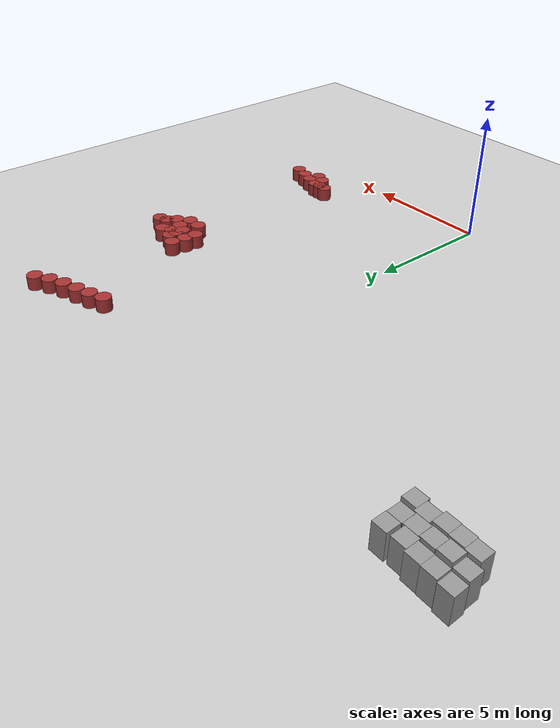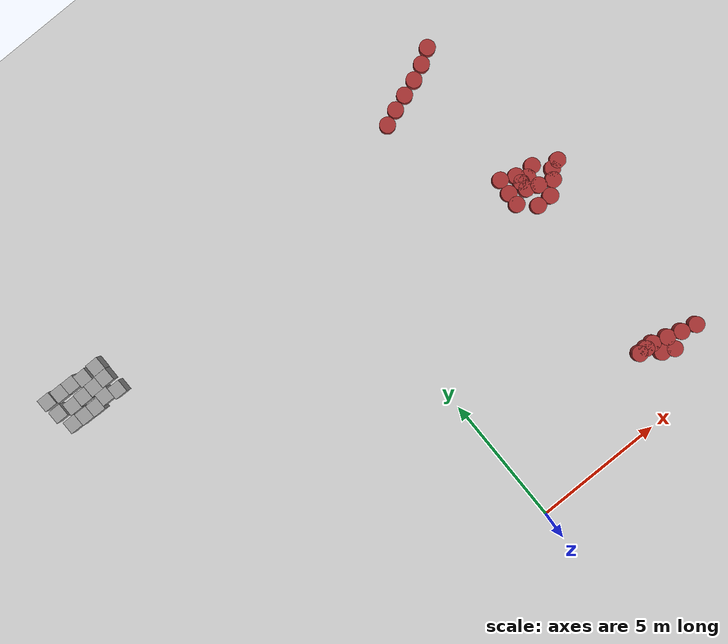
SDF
<sdf version="1.6">
 <world name="default">
  <model name="ground_plane">
   <static>1</static>
   <link name="link">
    <collision name="collision">
     <geometry><plane><normal>0 0 1</normal><size>100 100</size></plane></geometry>
     <surface><friction><ode><mu>100</mu><mu2>50</mu2></ode></friction></surface>
    </collision>
    <visual name="visual">
     <cast_shadows>0</cast_shadows>
     <geometry><plane><normal>0 0 1</normal><size>100 100</size></plane></geometry>
     <material>
      <script><uri>file://media/materials/scripts/gazebo.material</uri><name>Gazebo/Grey</name></script>
     </material>
    </visual>
   </link>
  </model>
  <model name="unit_cylinder_10">
   <static>1</static>
   <pose>5.63003 15.006 0 0 -0 0</pose>
   <link name="link">
    <inertial>
     <mass>1</mass>
     <inertia><ixx>0.145833</ixx><ixy>0</ixy><ixz>0</ixz><iyy>0.145833</iyy><iyz>0</iyz><izz>0.125</izz></inertia>
    </inertial>
    <collision name="collision">
     <geometry><cylinder><radius>0.3</radius><length>1</length></cylinder></geometry>
    </collision>
    <visual name="visual">
     <geometry><cylinder><radius>0.3</radius><length>1</length></cylinder></geometry>
     <material><ambient>0.648 0.192 0.192 1</ambient><diffuse>0.648 0.192 0.192 1</diffuse></material>
     <material>
      <script><name>Gazebo/Grey</name><uri>file://media/materials/scripts/gazebo.material</uri></script>
     </material>
    </visual>
   </link>
  </model>
  <model name="unit_cylinder_31">
   <static>1</static>
   <pose>7.97845 2.06635 0 0 -0 0</pose>
   <link name="link">
    <inertial>
     <mass>1</mass>
     <inertia><ixx>0.145833</ixx><ixy>0</ixy><ixz>0</ixz><iyy>0.145833</iyy><iyz>0</iyz><izz>0.125</izz></inertia>
    </inertial>
    <collision name="collision">
     <geometry><cylinder><radius>0.3</radius><length>1</length></cylinder></geometry>
    </collision>
    <visual name="visual">
     <geometry><cylinder><radius>0.3</radius><length>1</length></cylinder></geometry>
     <material><ambient>0.648 0.192 0.192 1</ambient><diffuse>0.648 0.192 0.192 1</diffuse></material>
     <material>
      <script><name>Gazebo/Grey</name><uri>file://media/materials/scripts/gazebo.material</uri></script>
     </material>
    </visual>
   </link>
  </model>
  <model name="unit_cylinder_36">
   <static>1</static>
   <pose>8.54934 1.9215 0 0 -0 0</pose>
   <link name="link">
    <inertial>
     <mass>1</mass>
     <inertia><ixx>0.145833</ixx><ixy>0</ixy><ixz>0</ixz><iyy>0.145833</iyy><iyz>0</iyz><izz>0.125</izz></inertia>
    </inertial>
    <collision name="collision">
     <geometry><cylinder><radius>0.3</radius><length>1</length></cylinder></geometry>
    </collision>
    <visual name="visual">
     <geometry><cylinder><radius>0.3</radius><length>1</length></cylinder></geometry>
     <material><ambient>0.648 0.192 0.192 1</ambient><diffuse>0.648 0.192 0.192 1</diffuse></material>
     <material>
      <script><name>Gazebo/Grey</name><uri>file://media/materials/scripts/gazebo.material</uri></script>
     </material>
    </visual>
   </link>
  </model>
  <model name="unit_cylinder_50">
   <static>1</static>
   <pose>6.36842 10.4436 0 0 -0 0</pose>
   <link name="link">
    <inertial>
     <mass>1</mass>
     <inertia><ixx>0.145833</ixx><ixy>0</ixy><ixz>0</ixz><iyy>0.145833</iyy><iyz>0</iyz><izz>0.125</izz></inertia>
    </inertial>
    <collision name="collision">
     <geometry><cylinder><radius>0.3</radius><length>1</length></cylinder></geometry>
    </collision>
    <visual name="visual">
     <geometry><cylinder><radius>0.3</radius><length>1</length></cylinder></geometry>
     <material><ambient>0.648 0.192 0.192 1</ambient><diffuse>0.648 0.192 0.192 1</diffuse></material>
     <material>
      <script><name>Gazebo/Grey</name><uri>file://media/materials/scripts/gazebo.material</uri></script>
     </material>
    </visual>
   </link>
  </model>
  <model name="unit_cylinder_51">
   <static>1</static>
   <pose>6.27683 9.38692 0 0 -0 0</pose>
   <link name="link">
    <inertial>
     <mass>1</mass>
     <inertia><ixx>0.145833</ixx><ixy>0</ixy><ixz>0</ixz><iyy>0.145833</iyy><iyz>0</iyz><izz>0.125</izz></inertia>
    </inertial>
    <collision name="collision">
     <geometry><cylinder><radius>0.3</radius><length>1</length></cylinder></geometry>
    </collision>
    <visual name="visual">
     <geometry><cylinder><radius>0.3</radius><length>1</length></cylinder></geometry>
     <material><ambient>0.648 0.192 0.192 1</ambient><diffuse>0.648 0.192 0.192 1</diffuse></material>
     <material>
      <script><name>Gazebo/Grey</name><uri>file://media/materials/scripts/gazebo.material</uri></script>
     </material>
    </visual>
   </link>
  </model>
  <model name="unit_cylinder_54">
   <static>1</static>
   <pose>6.84905 8.85668 0 0 -0 0</pose>
   <link name="link">
    <inertial>
     <mass>1</mass>
     <inertia><ixx>0.145833</ixx><ixy>0</ixy><ixz>0</ixz><iyy>0.145833</iyy><iyz>0</iyz><izz>0.125</izz></inertia>
    </inertial>
    <collision name="collision">
     <geometry><cylinder><radius>0.3</radius><length>1</length></cylinder></geometry>
    </collision>
    <visual name="visual">
     <geometry><cylinder><radius>0.3</radius><length>1</length></cylinder></geometry>
     <material><ambient>0.648 0.192 0.192 1</ambient><diffuse>0.648 0.192 0.192 1</diffuse></material>
     <material>
      <script><name>Gazebo/Grey</name><uri>file://media/materials/scripts/gazebo.material</uri></script>
     </material>
    </visual>
   </link>
  </model>
  <model name="unit_cylinder_55">
   <static>1</static>
   <pose>6.304 9.86983 0 0 -0 0</pose>
   <link name="link">
    <inertial>
     <mass>1</mass>
     <inertia><ixx>0.145833</ixx><ixy>0</ixy><ixz>0</ixz><iyy>0.145833</iyy><iyz>0</iyz><izz>0.125</izz></inertia>
    </inertial>
    <collision name="collision">
     <geometry><cylinder><radius>0.3</radius><length>1</length></cylinder></geometry>
    </collision>
    <visual name="visual">
     <geometry><cylinder><radius>0.3</radius><length>1</length></cylinder></geometry>
     <material><ambient>0.648 0.192 0.192 1</ambient><diffuse>0.648 0.192 0.192 1</diffuse></material>
     <material>
      <script><name>Gazebo/Grey</name><uri>file://media/materials/scripts/gazebo.material</uri></script>
     </material>
    </visual>
   </link>
  </model>
  <model name="unit_cylinder_56">
   <static>1</static>
   <pose>7.41842 8.85559 0 0 -0 0</pose>
   <link name="link">
    <inertial>
     <mass>1</mass>
     <inertia><ixx>0.145833</ixx><ixy>0</ixy><ixz>0</ixz><iyy>0.145833</iyy><iyz>0</iyz><izz>0.125</izz></inertia>
    </inertial>
    <collision name="collision">
     <geometry><cylinder><radius>0.3</radius><length>1</length></cylinder></geometry>
    </collision>
    <visual name="visual">
     <geometry><cylinder><radius>0.3</radius><length>1</length></cylinder></geometry>
     <material><ambient>0.648 0.192 0.192 1</ambient><diffuse>0.648 0.192 0.192 1</diffuse></material>
     <material>
      <script><name>Gazebo/Grey</name><uri>file://media/materials/scripts/gazebo.material</uri></script>
     </material>
    </visual>
   </link>
  </model>
  <model name="unit_cylinder_57">
   <static>1</static>
   <pose>7.32882 9.42661 0 0 -0 0</pose>
   <link name="link">
    <inertial>
     <mass>1</mass>
     <inertia><ixx>0.145833</ixx><ixy>0</ixy><ixz>0</ixz><iyy>0.145833</iyy><iyz>0</iyz><izz>0.125</izz></inertia>
    </inertial>
    <collision name="collision">
     <geometry><cylinder><radius>0.3</radius><length>1</length></cylinder></geometry>
    </collision>
    <visual name="visual">
     <geometry><cylinder><radius>0.3</radius><length>1</length></cylinder></geometry>
     <material><ambient>0.648 0.192 0.192 1</ambient><diffuse>0.648 0.192 0.192 1</diffuse></material>
     <material>
      <script><name>Gazebo/Grey</name><uri>file://media/materials/scripts/gazebo.material</uri></script>
     </material>
    </visual>
   </link>
  </model>
  <model name="unit_cylinder_59">
   <static>1</static>
   <pose>5.04319 14.7989 0 0 -0 0</pose>
   <link name="link">
    <inertial>
     <mass>1</mass>
     <inertia><ixx>0.145833</ixx><ixy>0</ixy><ixz>0</ixz><iyy>0.145833</iyy><iyz>0</iyz><izz>0.125</izz></inertia>
    </inertial>
    <collision name="collision">
     <geometry><cylinder><radius>0.3</radius><length>1</length></cylinder></geometry>
    </collision>
    <visual name="visual">
     <geometry><cylinder><radius>0.3</radius><length>1</length></cylinder></geometry>
     <material><ambient>0.648 0.192 0.192 1</ambient><diffuse>0.648 0.192 0.192 1</diffuse></material>
     <material>
      <script><name>Gazebo/Grey</name><uri>file://media/materials/scripts/gazebo.material</uri></script>
     </material>
    </visual>
   </link>
  </model>
  <model name="unit_cylinder_60">
   <static>1</static>
   <pose>4.47051 14.5568 0 0 -0 0</pose>
   <link name="link">
    <inertial>
     <mass>1</mass>
     <inertia><ixx>0.145833</ixx><ixy>0</ixy><ixz>0</ixz><iyy>0.145833</iyy><iyz>0</iyz><izz>0.125</izz></inertia>
    </inertial>
    <collision name="collision">
     <geometry><cylinder><radius>0.3</radius><length>1</length></cylinder></geometry>
    </collision>
    <visual name="visual">
     <geometry><cylinder><radius>0.3</radius><length>1</length></cylinder></geometry>
     <material><ambient>0.648 0.192 0.192 1</ambient><diffuse>0.648 0.192 0.192 1</diffuse></material>
     <material>
      <script><name>Gazebo/Grey</name><uri>file://media/materials/scripts/gazebo.material</uri></script>
     </material>
    </visual>
   </link>
  </model>
  <model name="unit_cylinder_61">
   <static>1</static>
   <pose>6.3 2.4 0 0 -0 0</pose>
   <link name="link">
    <inertial>
     <mass>1</mass>
     <inertia><ixx>0.145833</ixx><ixy>0</ixy><ixz>0</ixz><iyy>0.145833</iyy><iyz>0</iyz><izz>0.125</izz></inertia>
    </inertial>
    <collision name="collision">
     <geometry><cylinder><radius>0.3</radius><length>1</length></cylinder></geometry>
    </collision>
    <visual name="visual">
     <geometry><cylinder><radius>0.3</radius><length>1</length></cylinder></geometry>
     <material><ambient>0.648 0.192 0.192 1</ambient><diffuse>0.648 0.192 0.192 1</diffuse></material>
     <material>
      <script><name>Gazebo/Grey</name><uri>file://media/materials/scripts/gazebo.material</uri></script>
     </material>
    </visual>
   </link>
  </model>
  <model name="unit_cylinder_62">
   <static>1</static>
   <pose>6.81366 15.4863 0 0 -0 0</pose>
   <link name="link">
    <inertial>
     <mass>1</mass>
     <inertia><ixx>0.145833</ixx><ixy>0</ixy><ixz>0</ixz><iyy>0.145833</iyy><iyz>0</iyz><izz>0.125</izz></inertia>
    </inertial>
    <collision name="collision">
     <geometry><cylinder><radius>0.3</radius><length>1</length></cylinder></geometry>
    </collision>
    <visual name="visual">
     <geometry><cylinder><radius>0.3</radius><length>1</length></cylinder></geometry>
     <material><ambient>0.648 0.192 0.192 1</ambient><diffuse>0.648 0.192 0.192 1</diffuse></material>
     <material>
      <script><name>Gazebo/Grey</name><uri>file://media/materials/scripts/gazebo.material</uri></script>
     </material>
    </visual>
   </link>
  </model>
  <model name="unit_cylinder_63">
   <static>1</static>
   <pose>6.24098 15.2147 0 0 -0 0</pose>
   <link name="link">
    <inertial>
     <mass>1</mass>
     <inertia><ixx>0.145833</ixx><ixy>0</ixy><ixz>0</ixz><iyy>0.145833</iyy><iyz>0</iyz><izz>0.125</izz></inertia>
    </inertial>
    <collision name="collision">
     <geometry><cylinder><radius>0.3</radius><length>1</length></cylinder></geometry>
    </collision>
    <visual name="visual">
     <geometry><cylinder><radius>0.3</radius><length>1</length></cylinder></geometry>
     <material><ambient>0.648 0.192 0.192 1</ambient><diffuse>0.648 0.192 0.192 1</diffuse></material>
     <material>
      <script><name>Gazebo/Grey</name><uri>file://media/materials/scripts/gazebo.material</uri></script>
     </material>
    </visual>
   </link>
  </model>
  <model name="unit_cylinder_64">
   <static>1</static>
   <pose>7.44911 2.23405 0 0 -0 0</pose>
   <link name="link">
    <inertial>
     <mass>1</mass>
     <inertia><ixx>0.145833</ixx><ixy>0</ixy><ixz>0</ixz><iyy>0.145833</iyy><iyz>0</iyz><izz>0.125</izz></inertia>
    </inertial>
    <collision name="collision">
     <geometry><cylinder><radius>0.3</radius><length>1</length></cylinder></geometry>
    </collision>
    <visual name="visual">
     <geometry><cylinder><radius>0.3</radius><length>1</length></cylinder></geometry>
     <material><ambient>0.648 0.192 0.192 1</ambient><diffuse>0.648 0.192 0.192 1</diffuse></material>
     <material>
      <script><name>Gazebo/Grey</name><uri>file://media/materials/scripts/gazebo.material</uri></script>
     </material>
    </visual>
   </link>
  </model>
  <model name="unit_cylinder_65">
   <static>1</static>
   <pose>6.6 2.4 0 0 -0 0</pose>
   <link name="link">
    <inertial>
     <mass>1</mass>
     <inertia><ixx>0.145833</ixx><ixy>0</ixy><ixz>0</ixz><iyy>0.145833</iyy><iyz>0</iyz><izz>0.125</izz></inertia>
    </inertial>
    <collision name="collision">
     <geometry><cylinder><radius>0.3</radius><length>1</length></cylinder></geometry>
    </collision>
    <visual name="visual">
     <geometry><cylinder><radius>0.3</radius><length>1</length></cylinder></geometry>
     <material><ambient>0.648 0.192 0.192 1</ambient><diffuse>0.648 0.192 0.192 1</diffuse></material>
     <material>
      <script><name>Gazebo/Grey</name><uri>file://media/materials/scripts/gazebo.material</uri></script>
     </material>
    </visual>
   </link>
  </model>
  <model name="unit_cylinder_66">
   <static>1</static>
   <pose>7.3541 15.8169 0 0 -0 0</pose>
   <link name="link">
    <inertial>
     <mass>1</mass>
     <inertia><ixx>0.145833</ixx><ixy>0</ixy><ixz>0</ixz><iyy>0.145833</iyy><iyz>0</iyz><izz>0.125</izz></inertia>
    </inertial>
    <collision name="collision">
     <geometry><cylinder><radius>0.3</radius><length>1</length></cylinder></geometry>
    </collision>
    <visual name="visual">
     <geometry><cylinder><radius>0.3</radius><length>1</length></cylinder></geometry>
     <material><ambient>0.648 0.192 0.192 1</ambient><diffuse>0.648 0.192 0.192 1</diffuse></material>
     <material>
      <script><name>Gazebo/Grey</name><uri>file://media/materials/scripts/gazebo.material</uri></script>
     </material>
    </visual>
   </link>
  </model>
  <model name="unit_cylinder_68">
   <static>1</static>
   <pose>6.9 2.4 0 0 -0 0</pose>
   <link name="link">
    <inertial>
     <mass>1</mass>
     <inertia><ixx>0.145833</ixx><ixy>0</ixy><ixz>0</ixz><iyy>0.145833</iyy><iyz>0</iyz><izz>0.125</izz></inertia>
    </inertial>
    <collision name="collision">
     <geometry><cylinder><radius>0.3</radius><length>1</length></cylinder></geometry>
    </collision>
    <visual name="visual">
     <geometry><cylinder><radius>0.3</radius><length>1</length></cylinder></geometry>
     <material><ambient>0.648 0.192 0.192 1</ambient><diffuse>0.648 0.192 0.192 1</diffuse></material>
     <material>
      <script><name>Gazebo/Grey</name><uri>file://media/materials/scripts/gazebo.material</uri></script>
     </material>
    </visual>
   </link>
  </model>
  <model name="unit_cylinder_69">
   <static>1</static>
   <pose>6.9 9.6 0 0 -0 0</pose>
   <link name="link">
    <inertial>
     <mass>1</mass>
     <inertia><ixx>0.145833</ixx><ixy>0</ixy><ixz>0</ixz><iyy>0.145833</iyy><iyz>0</iyz><izz>0.125</izz></inertia>
    </inertial>
    <collision name="collision">
     <geometry><cylinder><radius>0.3</radius><length>1</length></cylinder></geometry>
    </collision>
    <visual name="visual">
     <geometry><cylinder><radius>0.3</radius><length>1</length></cylinder></geometry>
     <material><ambient>0.648 0.192 0.192 1</ambient><diffuse>0.648 0.192 0.192 1</diffuse></material>
     <material>
      <script><name>Gazebo/Grey</name><uri>file://media/materials/scripts/gazebo.material</uri></script>
     </material>
    </visual>
   </link>
  </model>
  <model name="unit_cylinder_70">
   <static>1</static>
   <pose>6.9 9.9 0 0 -0 0</pose>
   <link name="link">
    <inertial>
     <mass>1</mass>
     <inertia><ixx>0.145833</ixx><ixy>0</ixy><ixz>0</ixz><iyy>0.145833</iyy><iyz>0</iyz><izz>0.125</izz></inertia>
    </inertial>
    <collision name="collision">
     <geometry><cylinder><radius>0.3</radius><length>1</length></cylinder></geometry>
    </collision>
    <visual name="visual">
     <geometry><cylinder><radius>0.3</radius><length>1</length></cylinder></geometry>
     <material><ambient>0.648 0.192 0.192 1</ambient><diffuse>0.648 0.192 0.192 1</diffuse></material>
     <material>
      <script><name>Gazebo/Grey</name><uri>file://media/materials/scripts/gazebo.material</uri></script>
     </material>
    </visual>
   </link>
  </model>
  <model name="unit_cylinder_71">
   <static>1</static>
   <pose>6.9 10.2 0 0 -0 0</pose>
   <link name="link">
    <inertial>
     <mass>1</mass>
     <inertia><ixx>0.145833</ixx><ixy>0</ixy><ixz>0</ixz><iyy>0.145833</iyy><iyz>0</iyz><izz>0.125</izz></inertia>
    </inertial>
    <collision name="collision">
     <geometry><cylinder><radius>0.3</radius><length>1</length></cylinder></geometry>
    </collision>
    <visual name="visual">
     <geometry><cylinder><radius>0.3</radius><length>1</length></cylinder></geometry>
     <material><ambient>0.648 0.192 0.192 1</ambient><diffuse>0.648 0.192 0.192 1</diffuse></material>
     <material>
      <script><name>Gazebo/Grey</name><uri>file://media/materials/scripts/gazebo.material</uri></script>
     </material>
    </visual>
   </link>
  </model>
  <model name="unit_cylinder_72">
   <static>1</static>
   <pose>7.2 9.9 0 0 -0 0</pose>
   <link name="link">
    <inertial>
     <mass>1</mass>
     <inertia><ixx>0.145833</ixx><ixy>0</ixy><ixz>0</ixz><iyy>0.145833</iyy><iyz>0</iyz><izz>0.125</izz></inertia>
    </inertial>
    <collision name="collision">
     <geometry><cylinder><radius>0.3</radius><length>1</length></cylinder></geometry>
    </collision>
    <visual name="visual">
     <geometry><cylinder><radius>0.3</radius><length>1</length></cylinder></geometry>
     <material><ambient>0.648 0.192 0.192 1</ambient><diffuse>0.648 0.192 0.192 1</diffuse></material>
     <material>
      <script><name>Gazebo/Grey</name><uri>file://media/materials/scripts/gazebo.material</uri></script>
     </material>
    </visual>
   </link>
  </model>
  <model name="unit_cylinder_80">
   <static>1</static>
   <pose>7.8596 9.24358 0 0 -0 0</pose>
   <link name="link">
    <inertial>
     <mass>1</mass>
     <inertia><ixx>0.145833</ixx><ixy>0</ixy><ixz>0</ixz><iyy>0.145833</iyy><iyz>0</iyz><izz>0.125</izz></inertia>
    </inertial>
    <collision name="collision">
     <geometry><cylinder><radius>0.3</radius><length>1</length></cylinder></geometry>
    </collision>
    <visual name="visual">
     <geometry><cylinder><radius>0.3</radius><length>1</length></cylinder></geometry>
     <material><ambient>0.648 0.192 0.192 1</ambient><diffuse>0.648 0.192 0.192 1</diffuse></material>
     <material>
      <script><name>Gazebo/Grey</name><uri>file://media/materials/scripts/gazebo.material</uri></script>
     </material>
    </visual>
   </link>
  </model>
  <model name="unit_cylinder_82">
   <static>1</static>
   <pose>8.43246 9.69504 0 0 -0 0</pose>
   <link name="link">
    <inertial>
     <mass>1</mass>
     <inertia><ixx>0.145833</ixx><ixy>0</ixy><ixz>0</ixz><iyy>0.145833</iyy><iyz>0</iyz><izz>0.125</izz></inertia>
    </inertial>
    <collision name="collision">
     <geometry><cylinder><radius>0.3</radius><length>1</length></cylinder></geometry>
    </collision>
    <visual name="visual">
     <geometry><cylinder><radius>0.3</radius><length>1</length></cylinder></geometry>
     <material><ambient>0.648 0.192 0.192 1</ambient><diffuse>0.648 0.192 0.192 1</diffuse></material>
     <material>
      <script><name>Gazebo/Grey</name><uri>file://media/materials/scripts/gazebo.material</uri></script>
     </material>
    </visual>
   </link>
  </model>
  <model name="unit_cylinder_83">
   <static>1</static>
   <pose>8.09771 9.57615 0 0 -0 0</pose>
   <link name="link">
    <inertial>
     <mass>1</mass>
     <inertia><ixx>0.145833</ixx><ixy>0</ixy><ixz>0</ixz><iyy>0.145833</iyy><iyz>0</iyz><izz>0.125</izz></inertia>
    </inertial>
    <collision name="collision">
     <geometry><cylinder><radius>0.3</radius><length>1</length></cylinder></geometry>
    </collision>
    <visual name="visual">
     <geometry><cylinder><radius>0.3</radius><length>1</length></cylinder></geometry>
     <material><ambient>0.648 0.192 0.192 1</ambient><diffuse>0.648 0.192 0.192 1</diffuse></material>
     <material>
      <script><name>Gazebo/Grey</name><uri>file://media/materials/scripts/gazebo.material</uri></script>
     </material>
    </visual>
   </link>
  </model>
  <model name="unit_cylinder_88">
   <static>1</static>
   <pose>7.58689 10.1187 0 0 -0 0</pose>
   <link name="link">
    <inertial>
     <mass>1</mass>
     <inertia><ixx>0.145833</ixx><ixy>0</ixy><ixz>0</ixz><iyy>0.145833</iyy><iyz>0</iyz><izz>0.125</izz></inertia>
    </inertial>
    <collision name="collision">
     <geometry><cylinder><radius>0.3</radius><length>1</length></cylinder></geometry>
    </collision>
    <visual name="visual">
     <geometry><cylinder><radius>0.3</radius><length>1</length></cylinder></geometry>
     <material><ambient>0.648 0.192 0.192 1</ambient><diffuse>0.648 0.192 0.192 1</diffuse></material>
     <material>
      <script><name>Gazebo/Grey</name><uri>file://media/materials/scripts/gazebo.material</uri></script>
     </material>
    </visual>
   </link>
  </model>
  <model name="unit_cylinder_345">
   <static>1</static>
   <pose>7.39574 1.74191 0 0 -0 0</pose>
   <link name="link">
    <inertial>
     <mass>1</mass>
     <inertia><ixx>0.145833</ixx><ixy>0</ixy><ixz>0</ixz><iyy>0.145833</iyy><iyz>0</iyz><izz>0.125</izz></inertia>
    </inertial>
    <collision name="collision">
     <geometry><cylinder><radius>0.3</radius><length>1</length></cylinder></geometry>
    </collision>
    <visual name="visual">
     <geometry><cylinder><radius>0.3</radius><length>1</length></cylinder></geometry>
     <material><ambient>0.648 0.192 0.192 1</ambient><diffuse>0.648 0.192 0.192 1</diffuse></material>
     <material>
      <script><name>Gazebo/Grey</name><uri>file://media/materials/scripts/gazebo.material</uri></script>
     </material>
    </visual>
   </link>
  </model>
  <model name="unit_cylinder_352">
   <static>1</static>
   <pose>6.95838 1.92803 0 0 -0 0</pose>
   <link name="link">
    <inertial>
     <mass>1</mass>
     <inertia><ixx>0.145833</ixx><ixy>0</ixy><ixz>0</ixz><iyy>0.145833</iyy><iyz>0</iyz><izz>0.125</izz></inertia>
    </inertial>
    <collision name="collision">
     <geometry><cylinder><radius>0.3</radius><length>1</length></cylinder></geometry>
    </collision>
    <visual name="visual">
     <geometry><cylinder><radius>0.3</radius><length>1</length></cylinder></geometry>
     <material><ambient>0.648 0.192 0.192 1</ambient><diffuse>0.648 0.192 0.192 1</diffuse></material>
     <material>
      <script><name>Gazebo/Grey</name><uri>file://media/materials/scripts/gazebo.material</uri></script>
     </material>
    </visual>
   </link>
  </model>
  <model name="unit_box_clone">
   <pose>-10.7293 14.5112 0.499995 8e-06 -9e-06 0.000933</pose>
   <link name="link">
    <inertial>
     <mass>1</mass>
     <inertia>
      <ixx>0.166667</ixx>
      <ixy>0</ixy>
      <ixz>0</ixz>
      <iyy>0.166667</iyy>
      <iyz>0</iyz>
      <izz>0.166667</izz>
     </inertia>
    </inertial>
    <collision name="collision"><geometry><box><size>0.5 0.5 1</size></box></geometry></collision>
    <visual name="visual">
     <geometry><box><size>0.5 0.5 1</size></box></geometry>
     <material>
      <script><name>Gazebo/Grey</name><uri>file://media/materials/scripts/gazebo.material</uri></script>
     </material>
    </visual>
   </link>
  </model>
  <model name="unit_box_clone_0">
   <pose>-11.2666 14.562 0.5 0 0 -0.000147</pose>
   <link name="link">
    <inertial>
     <mass>1</mass>
     <inertia>
      <ixx>0.166667</ixx>
      <ixy>0</ixy>
      <ixz>0</ixz>
      <iyy>0.166667</iyy>
      <iyz>0</iyz>
      <izz>0.166667</izz>
     </inertia>
    </inertial>
    <collision name="collision"><geometry><box><size>0.5 0.5 1</size></box></geometry></collision>
    <visual name="visual">
     <geometry><box><size>0.5 0.5 1</size></box></geometry>
     <material>
      <script><name>Gazebo/Grey</name><uri>file://media/materials/scripts/gazebo.material</uri></script>
     </material>
    </visual>
   </link>
  </model>
  <model name="unit_box_clone_1">
   <pose>-10.1494 13.8993 0.5 0 0 -0.016939</pose>
   <link name="link">
    <inertial>
     <mass>1</mass>
     <inertia>
      <ixx>0.166667</ixx>
      <ixy>0</ixy>
      <ixz>0</ixz>
      <iyy>0.166667</iyy>
      <iyz>0</iyz>
      <izz>0.166667</izz>
     </inertia>
    </inertial>
    <collision name="collision"><geometry><box><size>0.5 0.5 1</size></box></geometry></collision>
    <visual name="visual">
     <geometry><box><size>0.5 0.5 1</size></box></geometry>
     <material>
      <script><name>Gazebo/Grey</name><uri>file://media/materials/scripts/gazebo.material</uri></script>
     </material>
    </visual>
   </link>
  </model>
  <model name="unit_box_clone_2">
   <pose>-10.6506 13.8773 0.5 0 0 -0.019305</pose>
   <link name="link">
    <inertial>
     <mass>1</mass>
     <inertia>
      <ixx>0.166667</ixx>
      <ixy>0</ixy>
      <ixz>0</ixz>
      <iyy>0.166667</iyy>
      <iyz>0</iyz>
      <izz>0.166667</izz>
     </inertia>
    </inertial>
    <collision name="collision"><geometry><box><size>0.5 0.5 1</size></box></geometry></collision>
    <visual name="visual">
     <geometry><box><size>0.5 0.5 1</size></box></geometry>
     <material>
      <script><name>Gazebo/Grey</name><uri>file://media/materials/scripts/gazebo.material</uri></script>
     </material>
    </visual>
   </link>
  </model>
  <model name="unit_box_clone_3">
   <pose>-11.2169 13.9833 0.5 0 0 -0.000126</pose>
   <link name="link">
    <inertial>
     <mass>1</mass>
     <inertia>
      <ixx>0.166667</ixx>
      <ixy>0</ixy>
      <ixz>0</ixz>
      <iyy>0.166667</iyy>
      <iyz>0</iyz>
      <izz>0.166667</izz>
     </inertia>
    </inertial>
    <collision name="collision"><geometry><box><size>0.5 0.5 1</size></box></geometry></collision>
    <visual name="visual">
     <geometry><box><size>0.5 0.5 1</size></box></geometry>
     <material>
      <script><name>Gazebo/Grey</name><uri>file://media/materials/scripts/gazebo.material</uri></script>
     </material>
    </visual>
   </link>
  </model>
  <model name="unit_box_clone_4">
   <pose>-10.0419 13.3198 0.5 0 0 -0.002472</pose>
   <link name="link">
    <inertial>
     <mass>1</mass>
     <inertia>
      <ixx>0.166667</ixx>
      <ixy>0</ixy>
      <ixz>0</ixz>
      <iyy>0.166667</iyy>
      <iyz>0</iyz>
      <izz>0.166667</izz>
     </inertia>
    </inertial>
    <collision name="collision"><geometry><box><size>0.5 0.5 1</size></box></geometry></collision>
    <visual name="visual">
     <geometry><box><size>0.5 0.5 1</size></box></geometry>
     <material>
      <script><name>Gazebo/Grey</name><uri>file://media/materials/scripts/gazebo.material</uri></script>
     </material>
    </visual>
   </link>
  </model>
  <model name="unit_box_clone_5">
   <pose>-10.5419 13.3368 0.5 0 0 -0.002449</pose>
   <link name="link">
    <inertial>
     <mass>1</mass>
     <inertia>
      <ixx>0.166667</ixx>
      <ixy>0</ixy>
      <ixz>0</ixz>
      <iyy>0.166667</iyy>
      <iyz>0</iyz>
      <izz>0.166667</izz>
     </inertia>
    </inertial>
    <collision name="collision"><geometry><box><size>0.5 0.5 1</size></box></geometry></collision>
    <visual name="visual">
     <geometry><box><size>0.5 0.5 1</size></box></geometry>
     <material>
      <script><name>Gazebo/Grey</name><uri>file://media/materials/scripts/gazebo.material</uri></script>
     </material>
    </visual>
   </link>
  </model>
  <model name="unit_box_clone_6">
   <pose>-11.0422 13.3682 0.499998 6e-06 4e-06 -0.001111</pose>
   <link name="link">
    <inertial>
     <mass>1</mass>
     <inertia>
      <ixx>0.166667</ixx>
      <ixy>0</ixy>
      <ixz>0</ixz>
      <iyy>0.166667</iyy>
      <iyz>0</iyz>
      <izz>0.166667</izz>
     </inertia>
    </inertial>
    <collision name="collision"><geometry><box><size>0.5 0.5 1</size></box></geometry></collision>
    <visual name="visual">
     <geometry><box><size>0.5 0.5 1</size></box></geometry>
     <material>
      <script><name>Gazebo/Grey</name><uri>file://media/materials/scripts/gazebo.material</uri></script>
     </material>
    </visual>
   </link>
  </model>
  <model name="unit_box_clone_7">
   <pose>-9.54063 13.4184 0.5 0 0 -0.004014</pose>
   <link name="link">
    <inertial>
     <mass>1</mass>
     <inertia>
      <ixx>0.166667</ixx>
      <ixy>0</ixy>
      <ixz>0</ixz>
      <iyy>0.166667</iyy>
      <iyz>0</iyz>
      <izz>0.166667</izz>
     </inertia>
    </inertial>
    <collision name="collision"><geometry><box><size>0.5 0.5 1</size></box></geometry></collision>
    <visual name="visual">
     <geometry><box><size>0.5 0.5 1</size></box></geometry>
     <material>
      <script><name>Gazebo/Grey</name><uri>file://media/materials/scripts/gazebo.material</uri></script>
     </material>
    </visual>
   </link>
  </model>
  <model name="unit_box_clone_8">
   <pose>-9.64548 13.9192 0.5 0 0 -0.00322</pose>
   <link name="link">
    <inertial>
     <mass>1</mass>
     <inertia>
      <ixx>0.166667</ixx>
      <ixy>0</ixy>
      <ixz>0</ixz>
      <iyy>0.166667</iyy>
      <iyz>0</iyz>
      <izz>0.166667</izz>
     </inertia>
    </inertial>
    <collision name="collision"><geometry><box><size>0.5 0.5 1</size></box></geometry></collision>
    <visual name="visual">
     <geometry><box><size>0.5 0.5 1</size></box></geometry>
     <material>
      <script><name>Gazebo/Grey</name><uri>file://media/materials/scripts/gazebo.material</uri></script>
     </material>
    </visual>
   </link>
  </model>
  <model name="unit_box_clone_9">
   <pose>-9.72685 14.4207 0.5 0 -0 0.002069</pose>
   <link name="link">
    <inertial>
     <mass>1</mass>
     <inertia>
      <ixx>0.166667</ixx>
      <ixy>0</ixy>
      <ixz>0</ixz>
      <iyy>0.166667</iyy>
      <iyz>0</iyz>
      <izz>0.166667</izz>
     </inertia>
    </inertial>
    <collision name="collision"><geometry><box><size>0.5 0.5 1</size></box></geometry></collision>
    <visual name="visual">
     <geometry><box><size>0.5 0.5 1</size></box></geometry>
     <material>
      <script><name>Gazebo/Grey</name><uri>file://media/materials/scripts/gazebo.material</uri></script>
     </material>
    </visual>
   </link>
  </model>
  <model name="unit_box_clone_10">
   <pose>-9.13324 14.4425 0.5 0 -0 0.006225</pose>
   <link name="link">
    <inertial>
     <mass>1</mass>
     <inertia>
      <ixx>0.166667</ixx>
      <ixy>0</ixy>
      <ixz>0</ixz>
      <iyy>0.166667</iyy>
      <iyz>0</iyz>
      <izz>0.166667</izz>
     </inertia>
    </inertial>
    <collision name="collision"><geometry><box><size>0.5 0.5 1</size></box></geometry></collision>
    <visual name="visual">
     <geometry><box><size>0.5 0.5 1</size></box></geometry>
     <material>
      <script><name>Gazebo/Grey</name><uri>file://media/materials/scripts/gazebo.material</uri></script>
     </material>
    </visual>
   </link>
  </model>
  <model name="unit_box_clone_11">
   <pose>-9.14421 13.94 0.5 0 -0 0.001301</pose>
   <link name="link">
    <inertial>
     <mass>1</mass>
     <inertia>
      <ixx>0.166667</ixx>
      <ixy>0</ixy>
      <ixz>0</ixz>
      <iyy>0.166667</iyy>
      <iyz>0</iyz>
      <izz>0.166667</izz>
     </inertia>
    </inertial>
    <collision name="collision"><geometry><box><size>0.5 0.5 1</size></box></geometry></collision>
    <visual name="visual">
     <geometry><box><size>0.5 0.5 1</size></box></geometry>
     <material>
      <script><name>Gazebo/Grey</name><uri>file://media/materials/scripts/gazebo.material</uri></script>
     </material>
    </visual>
   </link>
  </model>
  <model name="unit_box_clone_12">
   <pose>-9.04069 13.3182 0.500001 -0 3e-06 -0.00491</pose>
   <link name="link">
    <inertial>
     <mass>1</mass>
     <inertia>
      <ixx>0.166667</ixx>
      <ixy>0</ixy>
      <ixz>0</ixz>
      <iyy>0.166667</iyy>
      <iyz>0</iyz>
      <izz>0.166667</izz>
     </inertia>
    </inertial>
    <collision name="collision"><geometry><box><size>0.5 0.5 1</size></box></geometry></collision>
    <visual name="visual">
     <geometry><box><size>0.5 0.5 1</size></box></geometry>
     <material>
      <script><name>Gazebo/Grey</name><uri>file://media/materials/scripts/gazebo.material</uri></script>
     </material>
    </visual>
   </link>
  </model>
  <model name="unit_box_clone_clone">
   <pose>-10.2293 14.5016 0.499998 5e-06 2e-06 0.000933</pose>
   <link name="link">
    <inertial>
     <mass>1</mass>
     <inertia>
      <ixx>0.166667</ixx>
      <ixy>0</ixy>
      <ixz>0</ixz>
      <iyy>0.166667</iyy>
      <iyz>0</iyz>
      <izz>0.166667</izz>
     </inertia>
    </inertial>
    <collision name="collision"><geometry><box><size>0.5 0.5 1</size></box></geometry></collision>
    <visual name="visual">
     <geometry><box><size>0.5 0.5 1</size></box></geometry>
     <material>
      <script><name>Gazebo/Grey</name><uri>file://media/materials/scripts/gazebo.material</uri></script>
     </material>
    </visual>
   </link>
  </model>
 </world>
</sdf>
